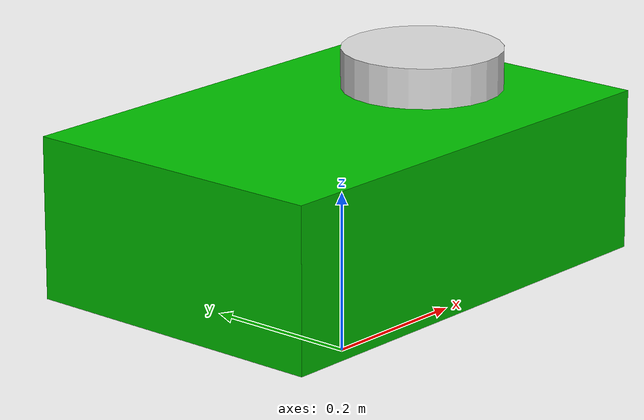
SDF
<sdf version='1.11'>
  <model name='dd_robot'>
    <link name='base_footprint'>
      <inertial>
        <pose>0.077777777777777779 0 0.20000000000000001 0 0 0</pose>
        <mass>0.13500000000000001</mass>
        <inertia>
          <ixx>0.00133</ixx>
          <ixy>0</ixy>
          <ixz>0</ixz>
          <iyy>0.0036633333333333348</iyy>
          <iyz>0</iyz>
          <izz>0.0036633333333333331</izz>
        </inertia>
      </inertial>
      <collision name='base_footprint_fixed_joint_lump__base_link_collision'>
        <pose>0 0 0.20000000000000001 0 0 0</pose>
        <geometry>
          <box>
            <size>0.59999999999999998 0.40000000000000002 0.20000000000000001</size>
          </box>
        </geometry>
      </collision>
      <collision name='base_footprint_fixed_joint_lump__caster_wheel_link_collision_1'>
        <pose>0.20000000000000001 0 0.050000000000000003 0 0 0</pose>
        <geometry>
          <sphere>
            <radius>0.050000000000000003</radius>
          </sphere>
        </geometry>
      </collision>
      <collision name='base_footprint_fixed_joint_lump__lidar_link_collision_2'>
        <pose>0.14999999999999999 0 0.32500000000000001 3.1400000000000001 0 0</pose>
        <geometry>
          <cylinder>
            <length>0.050000000000000003</length>
            <radius>0.10000000000000001</radius>
          </cylinder>
        </geometry>
      </collision>
      <collision name='base_footprint_fixed_joint_lump__camera_link_collision_3'>
        <pose>0.29999999999999999 0 0.20000000000000001 0 0 0</pose>
        <geometry>
          <box>
            <size>0.014999999999999999 0.13 0.021999999999999999</size>
          </box>
        </geometry>
      </collision>
      <collision name='base_footprint_fixed_joint_lump__imu_link_collision_4'>
        <pose>0 0 0.20000000000000001 0 0 0</pose>
        <geometry>
          <box>
            <size>0.10000000000000001 0.10000000000000001 0.10000000000000001</size>
          </box>
        </geometry>
      </collision>
      <visual name='base_footprint_fixed_joint_lump__base_link_visual'>
        <pose>0 0 0.20000000000000001 0 0 0</pose>
        <geometry>
          <box>
            <size>0.59999999999999998 0.40000000000000002 0.20000000000000001</size>
          </box>
        </geometry>
        <material>
          <diffuse>0 0.75000006 0 1</diffuse>
          <ambient>0 0.75000006 0 1</ambient>
        </material>
      </visual>
      <visual name='base_footprint_fixed_joint_lump__caster_wheel_link_visual_1'>
        <pose>0.20000000000000001 0 0.050000000000000003 0 0 0</pose>
        <geometry>
          <sphere>
            <radius>0.050000000000000003</radius>
          </sphere>
        </geometry>
        <material>
          <diffuse>0.875 0.875 0.875 1</diffuse>
          <ambient>0.875 0.875 0.875 1</ambient>
        </material>
      </visual>
      <visual name='base_footprint_fixed_joint_lump__lidar_link_visual_2'>
        <pose>0.14999999999999999 0 0.32500000000000001 3.1400000000000001 0 0</pose>
        <geometry>
          <cylinder>
            <length>0.050000000000000003</length>
            <radius>0.10000000000000001</radius>
          </cylinder>
        </geometry>
        <material>
          <diffuse>0.875 0.875 0.875 1</diffuse>
          <ambient>0.875 0.875 0.875 1</ambient>
        </material>
      </visual>
      <visual name='base_footprint_fixed_joint_lump__camera_link_visual_3'>
        <pose>0.29999999999999999 0 0.20000000000000001 0 0 0</pose>
        <geometry>
          <box>
            <size>0.014999999999999999 0.13 0.021999999999999999</size>
          </box>
        </geometry>
      </visual>
      <visual name='base_footprint_fixed_joint_lump__imu_link_visual_4'>
        <pose>0 0 0.20000000000000001 0 0 0</pose>
        <geometry>
          <box>
            <size>0.10000000000000001 0.10000000000000001 0.10000000000000001</size>
          </box>
        </geometry>
        <material>
          <diffuse>0.875 0.875 0.875 1</diffuse>
          <ambient>0.875 0.875 0.875 1</ambient>
        </material>
      </visual>
    </link>
    <frame name='base_caster_wheel_joint' attached_to='base_link'>
      <pose>0.20000000000000001 0 -0.050000000000000003 0 0 0</pose>
    </frame>
    <frame name='caster_wheel_link' attached_to='base_caster_wheel_joint'>
      <pose>0 0 0 0 0 0</pose>
    </frame>
    <frame name='base_lidar_joint' attached_to='base_link'>
      <pose>0.14999999999999999 0 0.22500000000000001 0 0 0</pose>
    </frame>
    <frame name='lidar_link' attached_to='base_lidar_joint'>
      <pose>0 0 0 0 0 0</pose>
    </frame>
    <frame name='camera_depth_joint' attached_to='camera_link'>
      <pose>0 0 0 -1.5700000000000001 -5.5511151231257827e-17 -1.5700000000000001</pose>
    </frame>
    <frame name='camera_depth_frame' attached_to='camera_depth_joint'>
      <pose>0 0 0 0 0 0</pose>
    </frame>
    <frame name='camera_joint' attached_to='base_link'>
      <pose>0.29999999999999999 0 0.10000000000000001 0 0 0</pose>
    </frame>
    <frame name='camera_link' attached_to='camera_joint'>
      <pose>0 0 0 0 0 0</pose>
    </frame>
    <frame name='imu_joint' attached_to='base_link'>
      <pose>0 0 0.10000000000000001 0 0 0</pose>
    </frame>
    <frame name='imu_link' attached_to='imu_joint'>
      <pose>0 0 0 0 0 0</pose>
    </frame>
    <frame name='base_joint' attached_to='base_footprint'>
      <pose>0 0 0.10000000000000001 0 0 0</pose>
    </frame>
    <frame name='base_link' attached_to='base_joint'>
      <pose>0 0 0 0 0 0</pose>
    </frame>
  </model>
</sdf>
